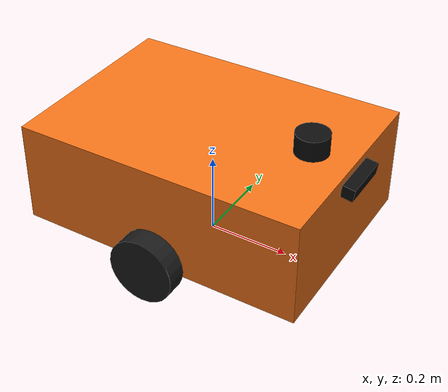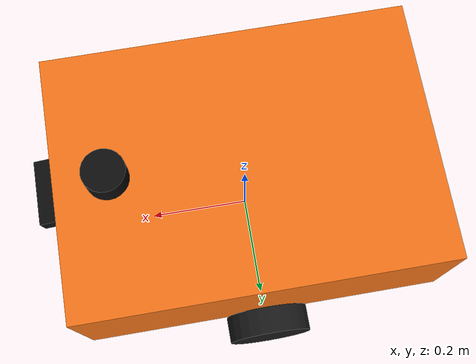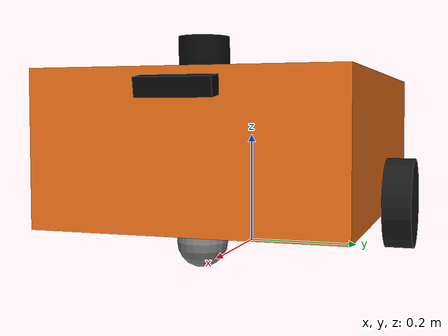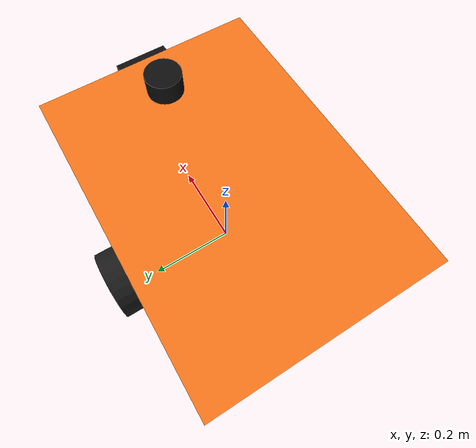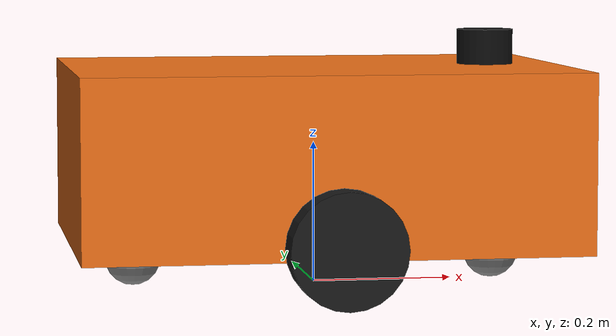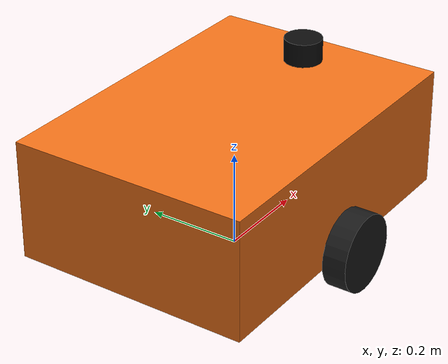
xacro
<?xml version="1.0"?>
<robot xmlns:xacro="http://www.ros.org/wiki/xacro" name="warehouse_amr">

  <xacro:arg name="controllers_file" default="$(find warehouse_description)/config/base_controllers.yaml"/>
  <xacro:arg name="sim_gazebo" default="true"/>

  <!-- Chassis and drive geometry (m, kg) -->
  <xacro:property name="chassis_length" value="0.70"/>
  <xacro:property name="chassis_width" value="0.50"/>
  <xacro:property name="chassis_height" value="0.25"/>
  <xacro:property name="chassis_mass" value="40.0"/>
  <xacro:property name="wheel_radius" value="0.08"/>
  <xacro:property name="wheel_width" value="0.05"/>
  <xacro:property name="wheel_mass" value="1.5"/>
  <xacro:property name="wheel_separation" value="0.56"/>
  <xacro:property name="caster_radius" value="0.04"/>
  <xacro:property name="caster_offset_x" value="0.26"/>
  <!-- Chassis bottom clearance above the axle centre -->
  <xacro:property name="chassis_z" value="${chassis_height / 2 - 0.02}"/>

  <xacro:macro name="box_inertia" params="m x y z">
    <inertia ixx="${m * (y * y + z * z) / 12}" ixy="0" ixz="0"
             iyy="${m * (x * x + z * z) / 12}" iyz="0"
             izz="${m * (x * x + y * y) / 12}"/>
  </xacro:macro>
  <xacro:macro name="cylinder_inertia" params="m r h">
    <!-- Axis along z of the link frame -->
    <inertia ixx="${m * (3 * r * r + h * h) / 12}" ixy="0" ixz="0"
             iyy="${m * (3 * r * r + h * h) / 12}" iyz="0"
             izz="${m * r * r / 2}"/>
  </xacro:macro>
  <xacro:macro name="sphere_inertia" params="m r">
    <inertia ixx="${2 * m * r * r / 5}" ixy="0" ixz="0"
             iyy="${2 * m * r * r / 5}" iyz="0" izz="${2 * m * r * r / 5}"/>
  </xacro:macro>

  <link name="base_footprint"/>

  <link name="base_link">
    <visual>
      <origin xyz="0 0 ${chassis_z}"/>
      <geometry><box size="${chassis_length} ${chassis_width} ${chassis_height}"/></geometry>
      <material name="amr_orange"><color rgba="0.95 0.45 0.1 1"/></material>
    </visual>
    <collision>
      <origin xyz="0 0 ${chassis_z}"/>
      <geometry><box size="${chassis_length} ${chassis_width} ${chassis_height}"/></geometry>
    </collision>
    <inertial>
      <origin xyz="0 0 ${chassis_z}"/>
      <mass value="${chassis_mass}"/>
      <xacro:box_inertia m="${chassis_mass}" x="${chassis_length}" y="${chassis_width}" z="${chassis_height}"/>
    </inertial>
  </link>

  <joint name="base_footprint_joint" type="fixed">
    <parent link="base_footprint"/>
    <child link="base_link"/>
    <origin xyz="0 0 ${wheel_radius}"/>
  </joint>

  <xacro:macro name="drive_wheel" params="side y">
    <link name="${side}_wheel_link">
      <visual>
        <origin rpy="${pi / 2} 0 0"/>
        <geometry><cylinder radius="${wheel_radius}" length="${wheel_width}"/></geometry>
        <material name="wheel_black"><color rgba="0.1 0.1 0.1 1"/></material>
      </visual>
      <collision>
        <origin rpy="${pi / 2} 0 0"/>
        <geometry><cylinder radius="${wheel_radius}" length="${wheel_width}"/></geometry>
      </collision>
      <inertial>
        <origin rpy="${pi / 2} 0 0"/>
        <mass value="${wheel_mass}"/>
        <xacro:cylinder_inertia m="${wheel_mass}" r="${wheel_radius}" h="${wheel_width}"/>
      </inertial>
    </link>
    <joint name="${side}_wheel_joint" type="continuous">
      <parent link="base_link"/>
      <child link="${side}_wheel_link"/>
      <origin xyz="0 ${y} 0"/>
      <axis xyz="0 1 0"/>
      <dynamics damping="0.05" friction="0.0"/>
    </joint>
    <gazebo reference="${side}_wheel_link">
      <mu1>1.0</mu1>
      <mu2>1.0</mu2>
    </gazebo>
  </xacro:macro>

  <xacro:drive_wheel side="left" y="${wheel_separation / 2}"/>
  <xacro:drive_wheel side="right" y="${-wheel_separation / 2}"/>

  <!-- Front and rear frictionless casters (fixed spheres) -->
  <xacro:macro name="caster" params="name x">
    <link name="${name}_caster_link">
      <visual>
        <geometry><sphere radius="${caster_radius}"/></geometry>
        <material name="caster_grey"><color rgba="0.5 0.5 0.5 1"/></material>
      </visual>
      <collision><geometry><sphere radius="${caster_radius}"/></geometry></collision>
      <inertial>
        <mass value="0.5"/>
        <xacro:sphere_inertia m="0.5" r="${caster_radius}"/>
      </inertial>
    </link>
    <joint name="${name}_caster_joint" type="fixed">
      <parent link="base_link"/>
      <child link="${name}_caster_link"/>
      <origin xyz="${x} 0 ${caster_radius - wheel_radius}"/>
    </joint>
    <gazebo reference="${name}_caster_link">
      <mu1>0.0</mu1>
      <mu2>0.0</mu2>
    </gazebo>
  </xacro:macro>

  <xacro:caster name="front" x="${caster_offset_x}"/>
  <xacro:caster name="rear" x="${-caster_offset_x}"/>

  <xacro:include filename="$(find warehouse_description)/urdf/sensors.xacro"/>
  <xacro:base_sensors chassis_top="${chassis_z + chassis_height / 2}" chassis_front="${chassis_length / 2}"/>

  <!-- ros2_control: wheel velocity commands, position and velocity states (encoders) -->
  <ros2_control name="AmrBaseSystem" type="system">
    <hardware>
      <plugin>gz_ros2_control/GazeboSimSystem</plugin>
    </hardware>
    <xacro:macro name="wheel_interfaces" params="side">
      <joint name="${side}_wheel_joint">
        <command_interface name="velocity">
          <param name="min">-10</param>
          <param name="max">10</param>
        </command_interface>
        <state_interface name="position"/>
        <state_interface name="velocity"/>
      </joint>
    </xacro:macro>
    <xacro:wheel_interfaces side="left"/>
    <xacro:wheel_interfaces side="right"/>
  </ros2_control>

  <xacro:if value="$(arg sim_gazebo)">
    <gazebo>
      <plugin filename="gz_ros2_control-system" name="gz_ros2_control::GazeboSimROS2ControlPlugin">
        <parameters>$(arg controllers_file)</parameters>
        <ros>
          <!-- Jazzy diff_drive_controller takes TwistStamped on ~/cmd_vel -->
          <remapping>/diff_drive_controller/cmd_vel:=/cmd_vel</remapping>
          <remapping>/diff_drive_controller/odom:=/odom</remapping>
        </ros>
      </plugin>
      <!-- Ground truth for evaluation only (localization ATE, 3D error): the
           true base pose in the world (= map) frame, never used for control. -->
      <plugin filename="gz-sim-odometry-publisher-system" name="gz::sim::systems::OdometryPublisher">
        <odom_frame>map</odom_frame>
        <robot_base_frame>base_footprint</robot_base_frame>
        <odom_topic>ground_truth/odom</odom_topic>
        <odom_publish_frequency>50</odom_publish_frequency>
        <dimensions>2</dimensions>
      </plugin>
    </gazebo>
  </xacro:if>
</robot>

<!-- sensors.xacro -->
<robot xmlns:xacro="http://www.ros.org/wiki/xacro">
  <xacro:macro name="base_sensors" params="chassis_top chassis_front">

    <!-- 2D LiDAR on a short mast at the front, above the chassis -->
    <link name="laser_link">
      <visual>
        <geometry><cylinder radius="0.04" length="0.05"/></geometry>
        <material name="sensor_black"><color rgba="0.05 0.05 0.05 1"/></material>
      </visual>
      <collision><geometry><cylinder radius="0.04" length="0.05"/></geometry></collision>
      <inertial>
        <mass value="0.2"/>
        <inertia ixx="1e-4" ixy="0" ixz="0" iyy="1e-4" iyz="0" izz="1e-4"/>
      </inertial>
    </link>
    <joint name="laser_joint" type="fixed">
      <parent link="base_link"/>
      <child link="laser_link"/>
      <origin xyz="${chassis_front - 0.10} 0 ${chassis_top + 0.025}"/>
    </joint>
    <gazebo reference="laser_link">
      <sensor name="lidar" type="gpu_lidar">
        <topic>scan</topic>
        <gz_frame_id>laser_link</gz_frame_id>
        <update_rate>10</update_rate>
        <always_on>true</always_on>
        <visualize>false</visualize>
        <lidar>
          <scan>
            <horizontal>
              <samples>720</samples>
              <resolution>1</resolution>
              <min_angle>-3.14159</min_angle>
              <max_angle>3.14159</max_angle>
            </horizontal>
            <vertical>
              <samples>1</samples>
              <min_angle>0</min_angle>
              <max_angle>0</max_angle>
            </vertical>
          </scan>
          <range>
            <min>0.12</min>
            <max>20.0</max>
            <resolution>0.01</resolution>
          </range>
          <noise>
            <type>gaussian</type>
            <mean>0.0</mean>
            <stddev>0.01</stddev>
          </noise>
        </lidar>
      </sensor>
    </gazebo>

    <!-- RGB-D camera at the front face, pitched 0.15 rad down -->
    <link name="camera_link">
      <visual>
        <geometry><box size="0.03 0.12 0.03"/></geometry>
        <material name="sensor_black"/>
      </visual>
      <collision><geometry><box size="0.03 0.12 0.03"/></geometry></collision>
      <inertial>
        <mass value="0.1"/>
        <inertia ixx="1e-5" ixy="0" ixz="0" iyy="1e-5" iyz="0" izz="1e-5"/>
      </inertial>
    </link>
    <joint name="camera_joint" type="fixed">
      <parent link="base_link"/>
      <child link="camera_link"/>
      <origin xyz="${chassis_front + 0.015} 0 ${chassis_top - 0.03}" rpy="0 0.15 0"/>
    </joint>
    <link name="camera_optical_frame"/>
    <joint name="camera_optical_joint" type="fixed">
      <parent link="camera_link"/>
      <child link="camera_optical_frame"/>
      <origin rpy="${-pi / 2} 0 ${-pi / 2}"/>
    </joint>
    <gazebo reference="camera_link">
      <sensor name="rgbd_camera" type="rgbd_camera">
        <topic>camera</topic>
        <gz_frame_id>camera_optical_frame</gz_frame_id>
        <update_rate>15</update_rate>
        <always_on>true</always_on>
        <visualize>false</visualize>
        <camera>
          <horizontal_fov>1.2</horizontal_fov>
          <image>
            <width>640</width>
            <height>480</height>
            <format>R8G8B8</format>
          </image>
          <clip>
            <near>0.05</near>
            <far>15.0</far>
          </clip>
          <depth_camera>
            <clip>
              <near>0.2</near>
              <far>10.0</far>
            </clip>
          </depth_camera>
          <noise>
            <type>gaussian</type>
            <mean>0.0</mean>
            <stddev>0.007</stddev>
          </noise>
        </camera>
      </sensor>
    </gazebo>

    <!-- IMU at the chassis centre -->
    <link name="imu_link"/>
    <joint name="imu_joint" type="fixed">
      <parent link="base_link"/>
      <child link="imu_link"/>
      <origin xyz="0 0 0.05"/>
    </joint>
    <gazebo reference="imu_link">
      <sensor name="imu" type="imu">
        <topic>imu</topic>
        <gz_frame_id>imu_link</gz_frame_id>
        <update_rate>200</update_rate>
        <always_on>true</always_on>
        <imu>
          <angular_velocity>
            <x><noise type="gaussian"><mean>0</mean><stddev>0.002</stddev></noise></x>
            <y><noise type="gaussian"><mean>0</mean><stddev>0.002</stddev></noise></y>
            <z><noise type="gaussian"><mean>0</mean><stddev>0.002</stddev></noise></z>
          </angular_velocity>
          <linear_acceleration>
            <x><noise type="gaussian"><mean>0</mean><stddev>0.02</stddev></noise></x>
            <y><noise type="gaussian"><mean>0</mean><stddev>0.02</stddev></noise></y>
            <z><noise type="gaussian"><mean>0</mean><stddev>0.02</stddev></noise></z>
          </linear_acceleration>
        </imu>
      </sensor>
    </gazebo>
  </xacro:macro>
</robot>
